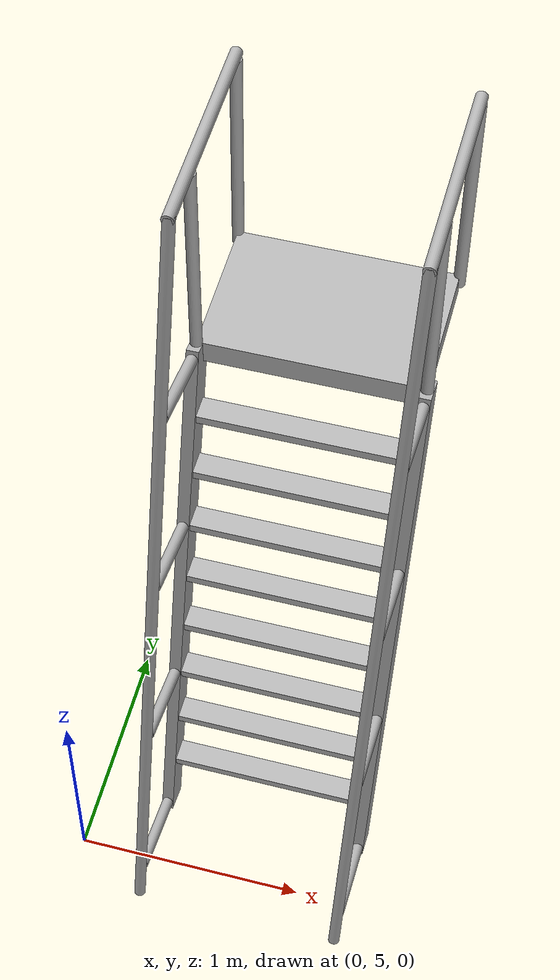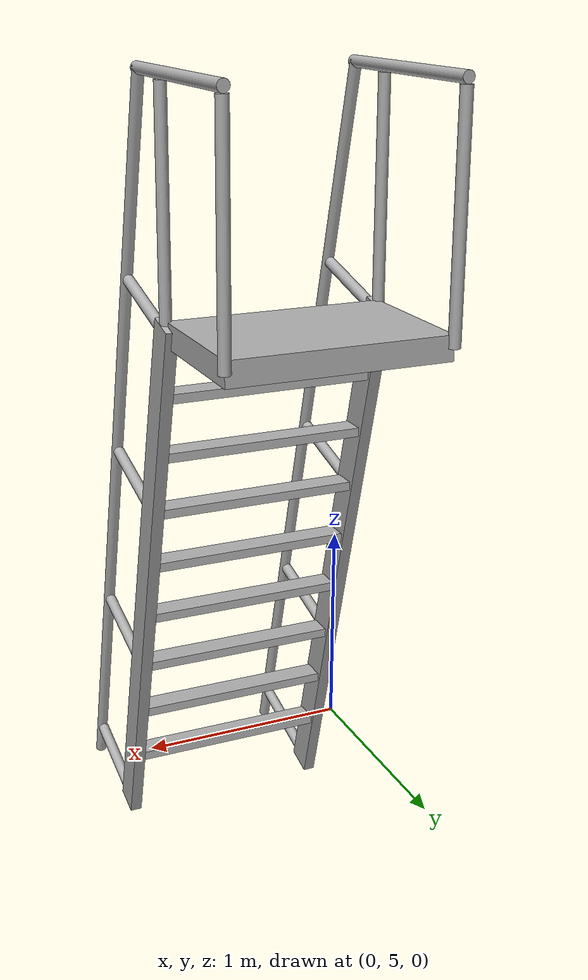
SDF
<sdf version="1.9">
 <world name="warehouse">
  <gravity>0 0 -9.8</gravity>
  <magnetic_field>6e-06 2.3e-05 -4.2e-05</magnetic_field>
  <atmosphere type="adiabatic"/>
  <physics type="ode">
   <max_step_size>0.001</max_step_size>
   <real_time_factor>1</real_time_factor>
   <real_time_update_rate>1000</real_time_update_rate>
  </physics>
  <scene><ambient>0.4 0.4 0.4 1</ambient><background>0.7 0.7 0.7 1</background><shadows>true</shadows></scene>
  <model name="ladder_75deg_2rails">
   <static>true</static>
   <link name="step0">
    <pose>0 0.071453 0.266667 0 -0 0</pose>
    <inertial>
     <mass>9.7548200000000005</mass>
     <inertia>
      <ixx>0.00957124</ixx>
      <iyy>0.65963000000000005</iyy>
      <izz>0.66684200000000005</izz>
      <ixy>0</ixy>
      <ixz>0</ixz>
      <iyz>0</iyz>
     </inertia>
    </inertial>
    <collision name="collision"><geometry><box><size>0.9 0.1016 0.0381</size></box></geometry></collision>
    <visual name="visual">
     <geometry><box><size>0.9 0.1016 0.0381</size></box></geometry>
     <material>
      <ambient>0.3 0.3 0.3 1</ambient>
      <diffuse>0.7 0.7 0.7 1</diffuse>
      <specular>0.01 0.01 0.01 1</specular>
     </material>
    </visual>
   </link>
   <link name="step1">
    <pose>0 0.142906 0.533333 0 -0 0</pose>
    <inertial>
     <mass>9.7548200000000005</mass>
     <inertia>
      <ixx>0.00957124</ixx>
      <iyy>0.65963000000000005</iyy>
      <izz>0.66684200000000005</izz>
      <ixy>0</ixy>
      <ixz>0</ixz>
      <iyz>0</iyz>
     </inertia>
    </inertial>
    <collision name="collision"><geometry><box><size>0.9 0.1016 0.0381</size></box></geometry></collision>
    <visual name="visual">
     <geometry><box><size>0.9 0.1016 0.0381</size></box></geometry>
     <material>
      <ambient>0.3 0.3 0.3 1</ambient>
      <diffuse>0.7 0.7 0.7 1</diffuse>
      <specular>0.01 0.01 0.01 1</specular>
     </material>
    </visual>
   </link>
   <link name="step2">
    <pose>0 0.214359 0.8 0 -0 0</pose>
    <inertial>
     <mass>9.7548200000000005</mass>
     <inertia>
      <ixx>0.00957124</ixx>
      <iyy>0.65963000000000005</iyy>
      <izz>0.66684200000000005</izz>
      <ixy>0</ixy>
      <ixz>0</ixz>
      <iyz>0</iyz>
     </inertia>
    </inertial>
    <collision name="collision"><geometry><box><size>0.9 0.1016 0.0381</size></box></geometry></collision>
    <visual name="visual">
     <geometry><box><size>0.9 0.1016 0.0381</size></box></geometry>
     <material>
      <ambient>0.3 0.3 0.3 1</ambient>
      <diffuse>0.7 0.7 0.7 1</diffuse>
      <specular>0.01 0.01 0.01 1</specular>
     </material>
    </visual>
   </link>
   <link name="step3">
    <pose>0 0.285812 1.06667 0 -0 0</pose>
    <inertial>
     <mass>9.7548200000000005</mass>
     <inertia>
      <ixx>0.00957124</ixx>
      <iyy>0.65963000000000005</iyy>
      <izz>0.66684200000000005</izz>
      <ixy>0</ixy>
      <ixz>0</ixz>
      <iyz>0</iyz>
     </inertia>
    </inertial>
    <collision name="collision"><geometry><box><size>0.9 0.1016 0.0381</size></box></geometry></collision>
    <visual name="visual">
     <geometry><box><size>0.9 0.1016 0.0381</size></box></geometry>
     <material>
      <ambient>0.3 0.3 0.3 1</ambient>
      <diffuse>0.7 0.7 0.7 1</diffuse>
      <specular>0.01 0.01 0.01 1</specular>
     </material>
    </visual>
   </link>
   <link name="step4">
    <pose>0 0.357266 1.33333 0 -0 0</pose>
    <inertial>
     <mass>9.7548200000000005</mass>
     <inertia>
      <ixx>0.00957124</ixx>
      <iyy>0.65963000000000005</iyy>
      <izz>0.66684200000000005</izz>
      <ixy>0</ixy>
      <ixz>0</ixz>
      <iyz>0</iyz>
     </inertia>
    </inertial>
    <collision name="collision"><geometry><box><size>0.9 0.1016 0.0381</size></box></geometry></collision>
    <visual name="visual">
     <geometry><box><size>0.9 0.1016 0.0381</size></box></geometry>
     <material>
      <ambient>0.3 0.3 0.3 1</ambient>
      <diffuse>0.7 0.7 0.7 1</diffuse>
      <specular>0.01 0.01 0.01 1</specular>
     </material>
    </visual>
   </link>
   <link name="step5">
    <pose>0 0.428719 1.6 0 -0 0</pose>
    <inertial>
     <mass>9.7548200000000005</mass>
     <inertia>
      <ixx>0.00957124</ixx>
      <iyy>0.65963000000000005</iyy>
      <izz>0.66684200000000005</izz>
      <ixy>0</ixy>
      <ixz>0</ixz>
      <iyz>0</iyz>
     </inertia>
    </inertial>
    <collision name="collision"><geometry><box><size>0.9 0.1016 0.0381</size></box></geometry></collision>
    <visual name="visual">
     <geometry><box><size>0.9 0.1016 0.0381</size></box></geometry>
     <material>
      <ambient>0.3 0.3 0.3 1</ambient>
      <diffuse>0.7 0.7 0.7 1</diffuse>
      <specular>0.01 0.01 0.01 1</specular>
     </material>
    </visual>
   </link>
   <link name="step6">
    <pose>0 0.500172 1.86667 0 -0 0</pose>
    <inertial>
     <mass>9.7548200000000005</mass>
     <inertia>
      <ixx>0.00957124</ixx>
      <iyy>0.65963000000000005</iyy>
      <izz>0.66684200000000005</izz>
      <ixy>0</ixy>
      <ixz>0</ixz>
      <iyz>0</iyz>
     </inertia>
    </inertial>
    <collision name="collision"><geometry><box><size>0.9 0.1016 0.0381</size></box></geometry></collision>
    <visual name="visual">
     <geometry><box><size>0.9 0.1016 0.0381</size></box></geometry>
     <material>
      <ambient>0.3 0.3 0.3 1</ambient>
      <diffuse>0.7 0.7 0.7 1</diffuse>
      <specular>0.01 0.01 0.01 1</specular>
     </material>
    </visual>
   </link>
   <link name="step7">
    <pose>0 0.571625 2.13333 0 -0 0</pose>
    <inertial>
     <mass>9.7548200000000005</mass>
     <inertia>
      <ixx>0.00957124</ixx>
      <iyy>0.65963000000000005</iyy>
      <izz>0.66684200000000005</izz>
      <ixy>0</ixy>
      <ixz>0</ixz>
      <iyz>0</iyz>
     </inertia>
    </inertial>
    <collision name="collision"><geometry><box><size>0.9 0.1016 0.0381</size></box></geometry></collision>
    <visual name="visual">
     <geometry><box><size>0.9 0.1016 0.0381</size></box></geometry>
     <material>
      <ambient>0.3 0.3 0.3 1</ambient>
      <diffuse>0.7 0.7 0.7 1</diffuse>
      <specular>0.01 0.01 0.01 1</specular>
     </material>
    </visual>
   </link>
   <link name="landing">
    <pose>0 0.943078 2.4 0 -0 0</pose>
    <inertial>
     <mass>57.607199999999999</mass>
     <inertia>
      <ixx>1.7351799999999999</ixx>
      <iyy>3.8954499999999999</iyy>
      <izz>5.6166999999999998</izz>
      <ixy>0</ixy>
      <ixz>0</ixz>
      <iyz>0</iyz>
     </inertia>
    </inertial>
    <collision name="collision"><geometry><box><size>0.9 0.6 0.1016</size></box></geometry></collision>
    <visual name="visual">
     <geometry><box><size>0.9 0.6 0.1016</size></box></geometry>
     <material>
      <ambient>0.3 0.3 0.3 1</ambient>
      <diffuse>0.7 0.7 0.7 1</diffuse>
      <specular>0.01 0.01 0.01 1</specular>
     </material>
    </visual>
   </link>
   <link name="left_side_wall">
    <pose>-0.45 0.321539 1.2 1.309 -0 0</pose>
    <collision name="collision"><geometry><box><size>0.0508 2.56466 0.13</size></box></geometry></collision>
    <visual name="visual">
     <geometry><box><size>0.0508 2.56466 0.13</size></box></geometry>
     <material>
      <ambient>0.3 0.3 0.3 1</ambient>
      <diffuse>0.7 0.7 0.7 1</diffuse>
      <specular>0.01 0.01 0.01 1</specular>
     </material>
    </visual>
    <inertial>
     <mass>1</mass>
     <inertia><ixx>1</ixx><ixy>0</ixy><ixz>0</ixz><iyy>1</iyy><iyz>0</iyz><izz>1</izz></inertia>
    </inertial>
   </link>
   <link name="right_side_wall">
    <pose>0.45 0.321539 1.2 1.309 -0 0</pose>
    <collision name="collision"><geometry><box><size>0.0508 2.56466 0.13</size></box></geometry></collision>
    <visual name="visual">
     <geometry><box><size>0.0508 2.56466 0.13</size></box></geometry>
     <material>
      <ambient>0.3 0.3 0.3 1</ambient>
      <diffuse>0.7 0.7 0.7 1</diffuse>
      <specular>0.01 0.01 0.01 1</specular>
     </material>
    </visual>
    <inertial>
     <mass>1</mass>
     <inertia><ixx>1</ixx><ixy>0</ixy><ixz>0</ixz><iyy>1</iyy><iyz>0</iyz><izz>1</izz></inertia>
    </inertial>
   </link>
   <link name="left_railing_long">
    <pose>-0.45 -0.053461 1.66651 -0.261799 0 0</pose>
    <collision name="collision">
     <geometry>
      <cylinder><radius>0.024129999999999999</radius><length>3.5152934205488977</length></cylinder>
     </geometry>
    </collision>
    <visual name="visual">
     <geometry>
      <cylinder><radius>0.024129999999999999</radius><length>3.5152934205488977</length></cylinder>
     </geometry>
     <material>
      <ambient>0.3 0.3 0.3 1</ambient>
      <diffuse>0.7 0.7 0.7 1</diffuse>
      <specular>0.01 0.01 0.01 1</specular>
     </material>
    </visual>
    <inertial>
     <mass>1</mass>
     <inertia><ixx>1</ixx><ixy>0</ixy><ixz>0</ixz><iyy>1</iyy><iyz>0</iyz><izz>1</izz></inertia>
    </inertial>
   </link>
   <link name="left_railing_upright0">
    <pose>-0.45 -0.210089 0.056293 1.309 -0 0</pose>
    <collision name="collision">
     <geometry>
      <cylinder><radius>0.024129999999999999</radius><length>0.48296291314453416</length></cylinder>
     </geometry>
    </collision>
    <visual name="visual">
     <geometry>
      <cylinder><radius>0.024129999999999999</radius><length>0.48296291314453416</length></cylinder>
     </geometry>
     <material>
      <ambient>0.3 0.3 0.3 1</ambient>
      <diffuse>0.7 0.7 0.7 1</diffuse>
      <specular>0.01 0.01 0.01 1</specular>
     </material>
    </visual>
    <inertial>
     <mass>1</mass>
     <inertia><ixx>1</ixx><ixy>0</ixy><ixz>0</ixz><iyy>1</iyy><iyz>0</iyz><izz>1</izz></inertia>
    </inertial>
   </link>
   <link name="left_railing_upright1">
    <pose>-0.45 0.00427 0.856293 1.309 -0 0</pose>
    <collision name="collision">
     <geometry>
      <cylinder><radius>0.024129999999999999</radius><length>0.48296291314453416</length></cylinder>
     </geometry>
    </collision>
    <visual name="visual">
     <geometry>
      <cylinder><radius>0.024129999999999999</radius><length>0.48296291314453416</length></cylinder>
     </geometry>
     <material>
      <ambient>0.3 0.3 0.3 1</ambient>
      <diffuse>0.7 0.7 0.7 1</diffuse>
      <specular>0.01 0.01 0.01 1</specular>
     </material>
    </visual>
    <inertial>
     <mass>1</mass>
     <inertia><ixx>1</ixx><ixy>0</ixy><ixz>0</ixz><iyy>1</iyy><iyz>0</iyz><izz>1</izz></inertia>
    </inertial>
   </link>
   <link name="left_railing_upright2">
    <pose>-0.45 0.21863 1.65629 1.309 -0 0</pose>
    <collision name="collision">
     <geometry>
      <cylinder><radius>0.024129999999999999</radius><length>0.48296291314453416</length></cylinder>
     </geometry>
    </collision>
    <visual name="visual">
     <geometry>
      <cylinder><radius>0.024129999999999999</radius><length>0.48296291314453416</length></cylinder>
     </geometry>
     <material>
      <ambient>0.3 0.3 0.3 1</ambient>
      <diffuse>0.7 0.7 0.7 1</diffuse>
      <specular>0.01 0.01 0.01 1</specular>
     </material>
    </visual>
    <inertial>
     <mass>1</mass>
     <inertia><ixx>1</ixx><ixy>0</ixy><ixz>0</ixz><iyy>1</iyy><iyz>0</iyz><izz>1</izz></inertia>
    </inertial>
   </link>
   <link name="left_railing_upright3">
    <pose>-0.45 0.432989 2.45629 1.309 -0 0</pose>
    <collision name="collision">
     <geometry>
      <cylinder><radius>0.024129999999999999</radius><length>0.48296291314453416</length></cylinder>
     </geometry>
    </collision>
    <visual name="visual">
     <geometry>
      <cylinder><radius>0.024129999999999999</radius><length>0.48296291314453416</length></cylinder>
     </geometry>
     <material>
      <ambient>0.3 0.3 0.3 1</ambient>
      <diffuse>0.7 0.7 0.7 1</diffuse>
      <specular>0.01 0.01 0.01 1</specular>
     </material>
    </visual>
    <inertial>
     <mass>1</mass>
     <inertia><ixx>1</ixx><ixy>0</ixy><ixz>0</ixz><iyy>1</iyy><iyz>0</iyz><izz>1</izz></inertia>
    </inertial>
   </link>
   <link name="left_railing_landing_top">
    <pose>-0.45 0.818078 3.35714 1.5708 -0 0</pose>
    <collision name="collision">
     <geometry>
      <cylinder><radius>0.024129999999999999</radius><length>0.87412999999999996</length></cylinder>
     </geometry>
    </collision>
    <visual name="visual">
     <geometry>
      <cylinder><radius>0.024129999999999999</radius><length>0.87412999999999996</length></cylinder>
     </geometry>
     <material>
      <ambient>0.3 0.3 0.3 1</ambient>
      <diffuse>0.7 0.7 0.7 1</diffuse>
      <specular>0.01 0.01 0.01 1</specular>
     </material>
    </visual>
    <inertial>
     <mass>1</mass>
     <inertia><ixx>1</ixx><ixy>0</ixy><ixz>0</ixz><iyy>1</iyy><iyz>0</iyz><izz>1</izz></inertia>
    </inertial>
   </link>
   <link name="left_railing_landing_upright_0">
    <pose>-0.45 0.643078 2.86651 0 -0 0</pose>
    <collision name="collision">
     <geometry>
      <cylinder><radius>0.024129999999999999</radius><length>0.93301270189221941</length></cylinder>
     </geometry>
    </collision>
    <visual name="visual">
     <geometry>
      <cylinder><radius>0.024129999999999999</radius><length>0.93301270189221941</length></cylinder>
     </geometry>
     <material>
      <ambient>0.3 0.3 0.3 1</ambient>
      <diffuse>0.7 0.7 0.7 1</diffuse>
      <specular>0.01 0.01 0.01 1</specular>
     </material>
    </visual>
    <inertial>
     <mass>1</mass>
     <inertia><ixx>1</ixx><ixy>0</ixy><ixz>0</ixz><iyy>1</iyy><iyz>0</iyz><izz>1</izz></inertia>
    </inertial>
   </link>
   <link name="left_railing_landing_upright_1">
    <pose>-0.45 1.24308 2.86651 0 -0 0</pose>
    <collision name="collision">
     <geometry>
      <cylinder><radius>0.024129999999999999</radius><length>0.93301270189221941</length></cylinder>
     </geometry>
    </collision>
    <visual name="visual">
     <geometry>
      <cylinder><radius>0.024129999999999999</radius><length>0.93301270189221941</length></cylinder>
     </geometry>
     <material>
      <ambient>0.3 0.3 0.3 1</ambient>
      <diffuse>0.7 0.7 0.7 1</diffuse>
      <specular>0.01 0.01 0.01 1</specular>
     </material>
    </visual>
    <inertial>
     <mass>1</mass>
     <inertia><ixx>1</ixx><ixy>0</ixy><ixz>0</ixz><iyy>1</iyy><iyz>0</iyz><izz>1</izz></inertia>
    </inertial>
   </link>
   <link name="right_railing_long">
    <pose>0.45 -0.053461 1.66651 -0.261799 0 0</pose>
    <collision name="collision">
     <geometry>
      <cylinder><radius>0.024129999999999999</radius><length>3.5152934205488977</length></cylinder>
     </geometry>
    </collision>
    <visual name="visual">
     <geometry>
      <cylinder><radius>0.024129999999999999</radius><length>3.5152934205488977</length></cylinder>
     </geometry>
     <material>
      <ambient>0.3 0.3 0.3 1</ambient>
      <diffuse>0.7 0.7 0.7 1</diffuse>
      <specular>0.01 0.01 0.01 1</specular>
     </material>
    </visual>
    <inertial>
     <mass>1</mass>
     <inertia><ixx>1</ixx><ixy>0</ixy><ixz>0</ixz><iyy>1</iyy><iyz>0</iyz><izz>1</izz></inertia>
    </inertial>
   </link>
   <link name="right_railing_upright0">
    <pose>0.45 -0.210089 0.056293 1.309 -0 0</pose>
    <collision name="collision">
     <geometry>
      <cylinder><radius>0.024129999999999999</radius><length>0.48296291314453416</length></cylinder>
     </geometry>
    </collision>
    <visual name="visual">
     <geometry>
      <cylinder><radius>0.024129999999999999</radius><length>0.48296291314453416</length></cylinder>
     </geometry>
     <material>
      <ambient>0.3 0.3 0.3 1</ambient>
      <diffuse>0.7 0.7 0.7 1</diffuse>
      <specular>0.01 0.01 0.01 1</specular>
     </material>
    </visual>
    <inertial>
     <mass>1</mass>
     <inertia><ixx>1</ixx><ixy>0</ixy><ixz>0</ixz><iyy>1</iyy><iyz>0</iyz><izz>1</izz></inertia>
    </inertial>
   </link>
   <link name="right_railing_upright1">
    <pose>0.45 0.00427 0.856293 1.309 -0 0</pose>
    <collision name="collision">
     <geometry>
      <cylinder><radius>0.024129999999999999</radius><length>0.48296291314453416</length></cylinder>
     </geometry>
    </collision>
    <visual name="visual">
     <geometry>
      <cylinder><radius>0.024129999999999999</radius><length>0.48296291314453416</length></cylinder>
     </geometry>
     <material>
      <ambient>0.3 0.3 0.3 1</ambient>
      <diffuse>0.7 0.7 0.7 1</diffuse>
      <specular>0.01 0.01 0.01 1</specular>
     </material>
    </visual>
    <inertial>
     <mass>1</mass>
     <inertia><ixx>1</ixx><ixy>0</ixy><ixz>0</ixz><iyy>1</iyy><iyz>0</iyz><izz>1</izz></inertia>
    </inertial>
   </link>
   <link name="right_railing_upright2">
    <pose>0.45 0.21863 1.65629 1.309 -0 0</pose>
    <collision name="collision">
     <geometry>
      <cylinder><radius>0.024129999999999999</radius><length>0.48296291314453416</length></cylinder>
     </geometry>
    </collision>
    <visual name="visual">
     <geometry>
      <cylinder><radius>0.024129999999999999</radius><length>0.48296291314453416</length></cylinder>
     </geometry>
     <material>
      <ambient>0.3 0.3 0.3 1</ambient>
      <diffuse>0.7 0.7 0.7 1</diffuse>
      <specular>0.01 0.01 0.01 1</specular>
     </material>
    </visual>
    <inertial>
     <mass>1</mass>
     <inertia><ixx>1</ixx><ixy>0</ixy><ixz>0</ixz><iyy>1</iyy><iyz>0</iyz><izz>1</izz></inertia>
    </inertial>
   </link>
   <link name="right_railing_upright3">
    <pose>0.45 0.432989 2.45629 1.309 -0 0</pose>
    <collision name="collision">
     <geometry>
      <cylinder><radius>0.024129999999999999</radius><length>0.48296291314453416</length></cylinder>
     </geometry>
    </collision>
    <visual name="visual">
     <geometry>
      <cylinder><radius>0.024129999999999999</radius><length>0.48296291314453416</length></cylinder>
     </geometry>
     <material>
      <ambient>0.3 0.3 0.3 1</ambient>
      <diffuse>0.7 0.7 0.7 1</diffuse>
      <specular>0.01 0.01 0.01 1</specular>
     </material>
    </visual>
    <inertial>
     <mass>1</mass>
     <inertia><ixx>1</ixx><ixy>0</ixy><ixz>0</ixz><iyy>1</iyy><iyz>0</iyz><izz>1</izz></inertia>
    </inertial>
   </link>
   <link name="right_railing_landing_top">
    <pose>0.45 0.818078 3.35714 1.5708 -0 0</pose>
    <collision name="collision">
     <geometry>
      <cylinder><radius>0.024129999999999999</radius><length>0.87412999999999996</length></cylinder>
     </geometry>
    </collision>
    <visual name="visual">
     <geometry>
      <cylinder><radius>0.024129999999999999</radius><length>0.87412999999999996</length></cylinder>
     </geometry>
     <material>
      <ambient>0.3 0.3 0.3 1</ambient>
      <diffuse>0.7 0.7 0.7 1</diffuse>
      <specular>0.01 0.01 0.01 1</specular>
     </material>
    </visual>
    <inertial>
     <mass>1</mass>
     <inertia><ixx>1</ixx><ixy>0</ixy><ixz>0</ixz><iyy>1</iyy><iyz>0</iyz><izz>1</izz></inertia>
    </inertial>
   </link>
   <link name="right_railing_landing_upright_0">
    <pose>0.45 0.643078 2.86651 0 -0 0</pose>
    <collision name="collision">
     <geometry>
      <cylinder><radius>0.024129999999999999</radius><length>0.93301270189221941</length></cylinder>
     </geometry>
    </collision>
    <visual name="visual">
     <geometry>
      <cylinder><radius>0.024129999999999999</radius><length>0.93301270189221941</length></cylinder>
     </geometry>
     <material>
      <ambient>0.3 0.3 0.3 1</ambient>
      <diffuse>0.7 0.7 0.7 1</diffuse>
      <specular>0.01 0.01 0.01 1</specular>
     </material>
    </visual>
    <inertial>
     <mass>1</mass>
     <inertia><ixx>1</ixx><ixy>0</ixy><ixz>0</ixz><iyy>1</iyy><iyz>0</iyz><izz>1</izz></inertia>
    </inertial>
   </link>
   <link name="right_railing_landing_upright_1">
    <pose>0.45 1.24308 2.86651 0 -0 0</pose>
    <collision name="collision">
     <geometry>
      <cylinder><radius>0.024129999999999999</radius><length>0.93301270189221941</length></cylinder>
     </geometry>
    </collision>
    <visual name="visual">
     <geometry>
      <cylinder><radius>0.024129999999999999</radius><length>0.93301270189221941</length></cylinder>
     </geometry>
     <material>
      <ambient>0.3 0.3 0.3 1</ambient>
      <diffuse>0.7 0.7 0.7 1</diffuse>
      <specular>0.01 0.01 0.01 1</specular>
     </material>
    </visual>
    <inertial>
     <mass>1</mass>
     <inertia><ixx>1</ixx><ixy>0</ixy><ixz>0</ixz><iyy>1</iyy><iyz>0</iyz><izz>1</izz></inertia>
    </inertial>
   </link>
   <pose>0.764425 5.34461 0 0 -0 0</pose>
  </model>
 </world>
</sdf>
